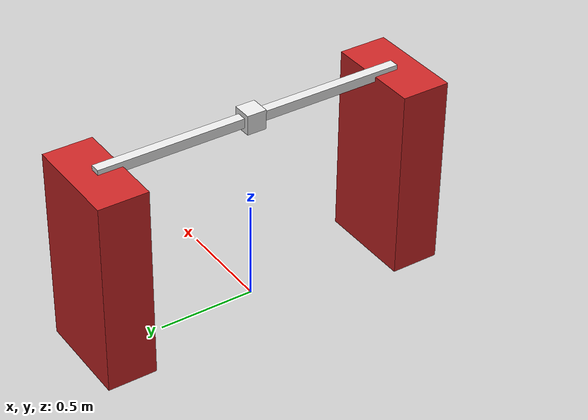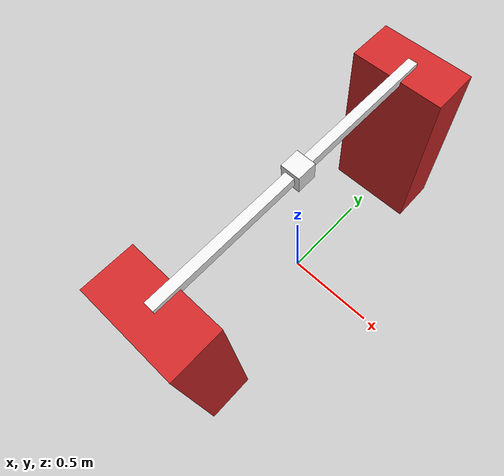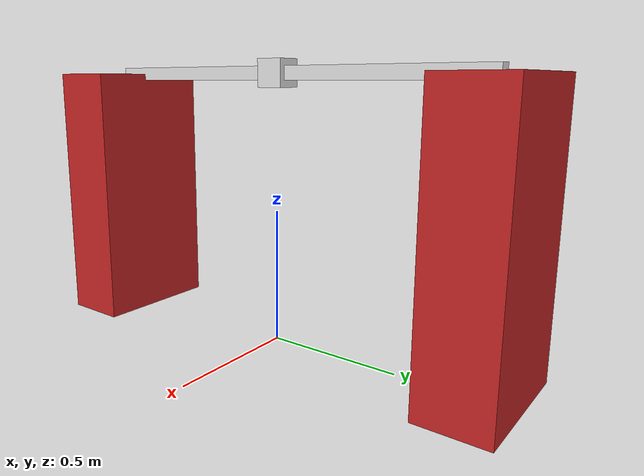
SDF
<sdf version='1.7'>
  <model name='testrig'>
    <link name='base_link'>
      <inertial>
        <pose>0 0 0.50025 0 -0 0</pose>
        <mass>2001</mass>
        <inertia>
          <ixx>1283.25</ixx>
          <ixy>0</ixy>
          <ixz>0</ixz>
          <iyy>3.24988</iyy>
          <iyz>0</iyz>
          <izz>1283</izz>
        </inertia>
      </inertial>
      <collision name='base_link_fixed_joint_lump__support_left_collision'>
        <pose>0 0.8 0.5 0 -0 0</pose>
        <geometry>
          <box>
            <size>0.5 0.25 1</size>
          </box>
        </geometry>
        <surface>
          <contact>
            <ode/>
          </contact>
          <friction>
            <ode/>
          </friction>
        </surface>
      </collision>
      <collision name='base_link_fixed_joint_lump__support_right_collision_1'>
        <pose>0 -0.8 0.5 0 -0 0</pose>
        <geometry>
          <box>
            <size>0.5 0.25 1</size>
          </box>
        </geometry>
        <surface>
          <contact>
            <ode/>
          </contact>
          <friction>
            <ode/>
          </friction>
        </surface>
      </collision>
      <visual name='base_link_fixed_joint_lump__gantry_visual'>
        <pose>0 0 1 0 -0 0</pose>
        <geometry>
          <box>
            <size>0.05 1.6 0.05</size>
          </box>
        </geometry>
        <material>
          <script>
            <name>Gazebo/White</name>
            <uri>file://media/materials/scripts/gazebo.material</uri>
          </script>
        </material>
      </visual>
      <visual name='base_link_fixed_joint_lump__support_left_visual_1'>
        <pose>0 0.8 0.5 0 -0 0</pose>
        <geometry>
          <box>
            <size>0.5 0.25 1</size>
          </box>
        </geometry>
        <material>
          <script>
            <name>Gazebo/Red</name>
            <uri>file://media/materials/scripts/gazebo.material</uri>
          </script>
        </material>
      </visual>
      <visual name='base_link_fixed_joint_lump__support_right_visual_2'>
        <pose>0 -0.8 0.5 0 -0 0</pose>
        <geometry>
          <box>
            <size>0.5 0.25 1</size>
          </box>
        </geometry>
        <material>
          <script>
            <name>Gazebo/Red</name>
            <uri>file://media/materials/scripts/gazebo.material</uri>
          </script>
        </material>
      </visual>
    </link>
    <joint name='gantry_to_vertical_rail' type='prismatic'>
      <pose relative_to='base_link'>0 0 1 0 -0 0</pose>
      <parent>base_link</parent>
      <child>vertical_rail</child>
      <axis>
        <xyz>0 0 1</xyz>
        <limit>
          <lower>-0.5</lower>
          <upper>0</upper>
          <effort>100</effort>
          <velocity>10</velocity>
        </limit>
        <dynamics>
          <spring_reference>0</spring_reference>
          <spring_stiffness>0</spring_stiffness>
        </dynamics>
      </axis>
    </joint>
    <link name='vertical_rail'>
      <pose relative_to='gantry_to_vertical_rail'>0 0 0 0 -0 0</pose>
      <inertial>
        <pose>0 0 0 0 -0 0</pose>
        <mass>30</mass>
        <inertia>
          <ixx>1</ixx>
          <ixy>0</ixy>
          <ixz>0</ixz>
          <iyy>1</iyy>
          <iyz>0</iyz>
          <izz>1</izz>
        </inertia>
      </inertial>
      <visual name='vertical_rail_visual'>
        <pose>0 0 0 0 -0 0</pose>
        <geometry>
          <box>
            <size>0.1 0.1 0.1</size>
          </box>
        </geometry>
        <material>
          <script>
            <name>Gazebo/White</name>
            <uri>file://media/materials/scripts/gazebo.material</uri>
          </script>
        </material>
      </visual>
    </link>
  </model>
</sdf>
